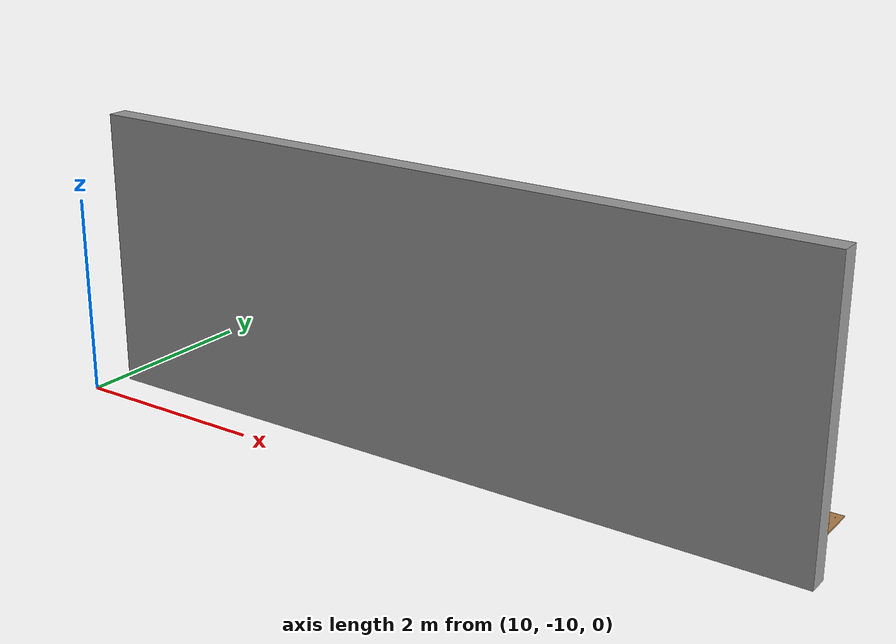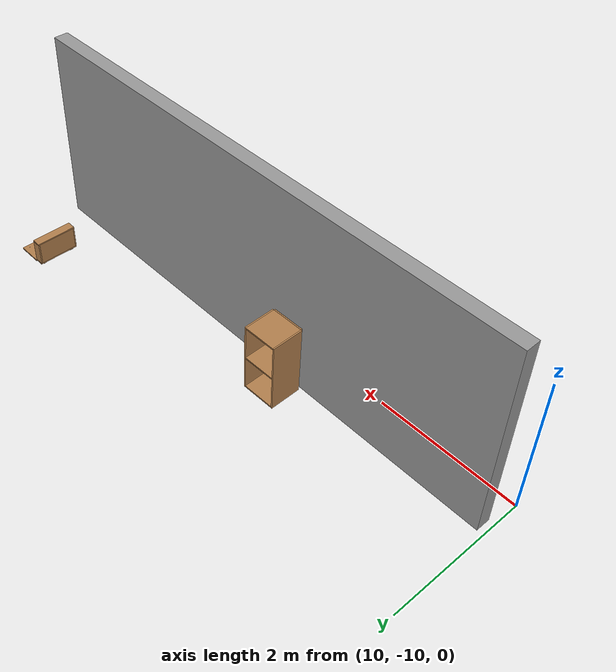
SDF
<sdf version="1.6">
 <world name="factory">
  <model name="grey_wall_clone_0">
   <static>1</static>
   <link name="link">
    <pose>0 0 1.4 0 -0 0</pose>
    <collision name="collision"><geometry><box><size>7.5 0.2 2.8</size></box></geometry></collision>
    <visual name="visual">
     <cast_shadows>0</cast_shadows>
     <geometry><box><size>7.5 0.2 2.8</size></box></geometry>
     <material>
      <script>
       <uri>model://grey_wall/materials/scripts</uri>
       <uri>model://grey_wall/materials/textures</uri>
       <name>vrc/grey_wall</name>
      </script>
     </material>
    </visual>
   </link>
   <pose>13.8347 -9.52636 0 0 -0 0</pose>
  </model>
  <model name="cabinet">
   <static>1</static>
   <link name="cabinet_bottom_plate">
    <inertial>
     <pose>0 0 -1 0 -0 0</pose>
     <inertia><ixx>2.05</ixx><ixy>0</ixy><ixz>0</ixz><iyy>2.05</iyy><iyz>0</iyz><izz>2.05</izz></inertia>
     <mass>25</mass>
    </inertial>
    <collision name="cabinet_bottom_plate_geom">
     <pose>0 0 0.01 0 -0 0</pose>
     <geometry><box><size>0.45 0.45 0.02</size></box></geometry>
    </collision>
    <visual name="cabinet_bottom_plate_geom_visual">
     <pose>0 0 0.01 0 -0 0</pose>
     <geometry><box><size>0.45 0.45 0.02</size></box></geometry>
     <material>
      <script><uri>file://media/materials/scripts/gazebo.material</uri><name>Gazebo/Wood</name></script>
     </material>
    </visual>
    <collision name="cabinet_bottom_plate_geom_cabinet_back_plate">
     <pose>0.235 0 0.51 0 -0 0</pose>
     <geometry><box><size>0.02 0.45 1.02</size></box></geometry>
    </collision>
    <visual name="cabinet_bottom_plate_geom_cabinet_back_plate_visual">
     <pose>0.235 0 0.51 0 -0 0</pose>
     <geometry><box><size>0.02 0.45 1.02</size></box></geometry>
     <material>
      <script><uri>file://media/materials/scripts/gazebo.material</uri><name>Gazebo/Wood</name></script>
     </material>
    </visual>
    <collision name="cabinet_bottom_plate_geom_cabinet_left_plate">
     <pose>0 0.235 0.51 0 -0 0</pose>
     <geometry><box><size>0.45 0.02 1.02</size></box></geometry>
    </collision>
    <visual name="cabinet_bottom_plate_geom_cabinet_left_plate_visual">
     <pose>0 0.235 0.51 0 -0 0</pose>
     <geometry><box><size>0.45 0.02 1.02</size></box></geometry>
     <material>
      <script><uri>file://media/materials/scripts/gazebo.material</uri><name>Gazebo/Wood</name></script>
     </material>
    </visual>
    <collision name="cabinet_bottom_plate_geom_cabinet_middle_plate">
     <pose>0 0 0.51 0 -0 0</pose>
     <geometry><box><size>0.45 0.45 0.02</size></box></geometry>
    </collision>
    <visual name="cabinet_bottom_plate_geom_cabinet_middle_plate_visual">
     <pose>0 0 0.51 0 -0 0</pose>
     <geometry><box><size>0.45 0.45 0.02</size></box></geometry>
     <material>
      <script><uri>file://media/materials/scripts/gazebo.material</uri><name>Gazebo/Wood</name></script>
     </material>
    </visual>
    <collision name="cabinet_bottom_plate_geom_cabinet_right_plate">
     <pose>0 -0.235 0.51 0 -0 0</pose>
     <geometry><box><size>0.45 0.02 1.02</size></box></geometry>
    </collision>
    <visual name="cabinet_bottom_plate_geom_cabinet_right_plate_visual">
     <pose>0 -0.235 0.51 0 -0 0</pose>
     <geometry><box><size>0.45 0.02 1.02</size></box></geometry>
     <material>
      <script><uri>file://media/materials/scripts/gazebo.material</uri><name>Gazebo/Wood</name></script>
     </material>
    </visual>
    <collision name="cabinet_bottom_plate_geom_cabinet_top_plate">
     <pose>0 0 1.01 0 -0 0</pose>
     <geometry><box><size>0.45 0.45 0.02</size></box></geometry>
    </collision>
    <visual name="cabinet_bottom_plate_geom_cabinet_top_plate_visual">
     <pose>0 0 1.01 0 -0 0</pose>
     <geometry><box><size>0.45 0.45 0.02</size></box></geometry>
     <material>
      <script><uri>file://media/materials/scripts/gazebo.material</uri><name>Gazebo/Wood</name></script>
     </material>
    </visual>
   </link>
   <pose>13.0394 -9.13497 0.037072 0 0 -1.55676</pose>
  </model>
  <model name="wooden_case">
   <link name="base">
    <pose>0 0 0.024 0 -0 0</pose>
    <inertial>
     <pose>-0.022184 0 0.171592 0 -0 0</pose>
     <mass>3.96264</mass>
     <inertia>
      <ixx>0.213536</ixx>
      <ixy>0</ixy>
      <ixz>0.000779377</ixz>
      <iyy>0.0708943</iyy>
      <iyz>0</iyz>
      <izz>0.154604</izz>
     </inertia>
    </inertial>
    <collision name="collision_back">
     <pose>-0.053975 0 0.1778 0 -0 0</pose>
     <geometry><box><size>0.01905 0.5461 0.3175</size></box></geometry>
     <surface>
      <contact>
       <poissons_ratio>0.347</poissons_ratio>
       <elastic_modulus>8.8e+09</elastic_modulus>
       <ode><kp>100000</kp><kd>100</kd><max_vel>100</max_vel><min_depth>0.001</min_depth></ode>
      </contact>
      <friction>
       <torsional>
        <coefficient>1</coefficient>
        <use_patch_radius>0</use_patch_radius>
        <surface_radius>0.01</surface_radius>
       </torsional>
      </friction>
     </surface>
    </collision>
    <visual name="visual_back">
     <pose>-0.053975 0 0.1778 0 -0 0</pose>
     <geometry><box><size>0.01905 0.5461 0.3175</size></box></geometry>
     <material>
      <script><uri>file://media/materials/scripts/gazebo.material</uri><name>Gazebo/Wood</name></script>
     </material>
    </visual>
    <collision name="collision_bottom">
     <pose>0 0 0.009525 0 -0 0</pose>
     <geometry><box><size>0.127 0.5842 0.01905</size></box></geometry>
     <surface>
      <contact>
       <poissons_ratio>0.347</poissons_ratio>
       <elastic_modulus>8.8e+09</elastic_modulus>
       <ode><kp>100000</kp><kd>100</kd><max_vel>100</max_vel><min_depth>0.001</min_depth></ode>
      </contact>
      <friction>
       <torsional>
        <coefficient>1</coefficient>
        <use_patch_radius>0</use_patch_radius>
        <surface_radius>0.01</surface_radius>
       </torsional>
      </friction>
     </surface>
    </collision>
    <visual name="visual_bottom">
     <pose>0 0 0.009525 0 -0 0</pose>
     <geometry><box><size>0.127 0.5842 0.01905</size></box></geometry>
     <material>
      <script><uri>file://media/materials/scripts/gazebo.material</uri><name>Gazebo/Wood</name></script>
     </material>
    </visual>
    <collision name="collision_top">
     <pose>0 0 0.346075 0 -0 0</pose>
     <geometry><box><size>0.127 0.5842 0.01905</size></box></geometry>
     <surface>
      <contact>
       <poissons_ratio>0.347</poissons_ratio>
       <elastic_modulus>8.8e+09</elastic_modulus>
       <ode><kp>100000</kp><kd>100</kd><max_vel>100</max_vel><min_depth>0.001</min_depth></ode>
      </contact>
      <friction>
       <torsional>
        <coefficient>1</coefficient>
        <use_patch_radius>0</use_patch_radius>
        <surface_radius>0.01</surface_radius>
       </torsional>
      </friction>
     </surface>
    </collision>
    <visual name="visual_top">
     <pose>0 0 0.346075 0 -0 0</pose>
     <geometry><box><size>0.127 0.5842 0.01905</size></box></geometry>
     <material>
      <script><uri>file://media/materials/scripts/gazebo.material</uri><name>Gazebo/Wood</name></script>
     </material>
    </visual>
    <collision name="collision_left">
     <pose>0 -0.282575 0.1778 0 -0 0</pose>
     <geometry><box><size>0.127 0.01905 0.3175</size></box></geometry>
     <surface>
      <contact>
       <poissons_ratio>0.347</poissons_ratio>
       <elastic_modulus>8.8e+09</elastic_modulus>
       <ode><kp>100000</kp><kd>100</kd><max_vel>100</max_vel><min_depth>0.001</min_depth></ode>
      </contact>
      <friction>
       <torsional>
        <coefficient>1</coefficient>
        <use_patch_radius>0</use_patch_radius>
        <surface_radius>0.01</surface_radius>
       </torsional>
      </friction>
     </surface>
    </collision>
    <visual name="visual_left">
     <pose>0 -0.282575 0.1778 0 -0 0</pose>
     <geometry><box><size>0.127 0.01905 0.3175</size></box></geometry>
     <material>
      <script><uri>file://media/materials/scripts/gazebo.material</uri><name>Gazebo/Wood</name></script>
     </material>
    </visual>
    <collision name="collision_right">
     <pose>0 0.282575 0.1778 0 -0 0</pose>
     <geometry><box><size>0.127 0.01905 0.3175</size></box></geometry>
     <surface>
      <contact>
       <poissons_ratio>0.347</poissons_ratio>
       <elastic_modulus>8.8e+09</elastic_modulus>
       <ode><kp>100000</kp><kd>100</kd><max_vel>100</max_vel><min_depth>0.001</min_depth></ode>
      </contact>
      <friction>
       <torsional>
        <coefficient>1</coefficient>
        <use_patch_radius>0</use_patch_radius>
        <surface_radius>0.01</surface_radius>
       </torsional>
      </friction>
     </surface>
    </collision>
    <visual name="visual_right">
     <pose>0 0.282575 0.1778 0 -0 0</pose>
     <geometry><box><size>0.127 0.01905 0.3175</size></box></geometry>
     <material>
      <script><uri>file://media/materials/scripts/gazebo.material</uri><name>Gazebo/Wood</name></script>
     </material>
    </visual>
    <collision name="collision_block_left">
     <pose>0.0095 -0.2151 -0.012 0 -0 0</pose>
     <geometry><box><size>0.108 0.05 0.024</size></box></geometry>
     <surface>
      <contact>
       <poissons_ratio>0.347</poissons_ratio>
       <elastic_modulus>8.8e+09</elastic_modulus>
       <ode><kp>100000</kp><kd>100</kd><max_vel>100</max_vel><min_depth>0.001</min_depth></ode>
      </contact>
      <friction>
       <torsional>
        <coefficient>1</coefficient>
        <use_patch_radius>0</use_patch_radius>
        <surface_radius>0.01</surface_radius>
       </torsional>
      </friction>
     </surface>
    </collision>
    <visual name="visual_block_left">
     <pose>0.0095 -0.2151 -0.012 0 -0 0</pose>
     <geometry><box><size>0.108 0.05 0.024</size></box></geometry>
     <material>
      <script><uri>file://media/materials/scripts/gazebo.material</uri><name>Gazebo/Wood</name></script>
     </material>
    </visual>
    <collision name="collision_block_right">
     <pose>0.0095 0.2151 -0.012 0 -0 0</pose>
     <geometry><box><size>0.108 0.05 0.024</size></box></geometry>
     <surface>
      <contact>
       <poissons_ratio>0.347</poissons_ratio>
       <elastic_modulus>8.8e+09</elastic_modulus>
       <ode><kp>100000</kp><kd>100</kd><max_vel>100</max_vel><min_depth>0.001</min_depth></ode>
      </contact>
      <friction>
       <torsional>
        <coefficient>1</coefficient>
        <use_patch_radius>0</use_patch_radius>
        <surface_radius>0.01</surface_radius>
       </torsional>
      </friction>
     </surface>
    </collision>
    <visual name="visual_block_right">
     <pose>0.0095 0.2151 -0.012 0 -0 0</pose>
     <geometry><box><size>0.108 0.05 0.024</size></box></geometry>
     <material>
      <script><uri>file://media/materials/scripts/gazebo.material</uri><name>Gazebo/Wood</name></script>
     </material>
    </visual>
   </link>
   <link name="lid">
    <pose>0.243775 0 0.009525 0 -0 0</pose>
    <inertial>
     <mass>1.97874</mass>
     <inertia>
      <ixx>0.0563367</ixx>
      <ixy>0</ixy>
      <ixz>0</ixz>
      <iyy>0.020911</iyy>
      <iyz>0</iyz>
      <izz>0.0771281</izz>
     </inertia>
    </inertial>
    <collision name="collision">
     <geometry><box><size>0.3556 0.5842 0.01905</size></box></geometry>
     <surface>
      <contact>
       <poissons_ratio>0.347</poissons_ratio>
       <elastic_modulus>8.8e+09</elastic_modulus>
       <ode><kp>100000</kp><kd>100</kd><max_vel>100</max_vel><min_depth>0.001</min_depth></ode>
      </contact>
      <friction>
       <torsional>
        <coefficient>1</coefficient>
        <use_patch_radius>0</use_patch_radius>
        <surface_radius>0.01</surface_radius>
       </torsional>
      </friction>
     </surface>
    </collision>
    <visual name="visual">
     <geometry><box><size>0.3556 0.5842 0.01905</size></box></geometry>
     <material>
      <script><uri>file://media/materials/scripts/gazebo.material</uri><name>Gazebo/Wood</name></script>
     </material>
    </visual>
    <visual name="tee_nut_1">
     <pose>0.122 -0.216 0 0 -0 0</pose>
     <geometry><cylinder><radius>0.00635</radius><length>0.0192405</length></cylinder></geometry>
     <material>
      <script><uri>file://media/materials/scripts/gazebo.material</uri><name>Gazebo/Grey</name></script>
     </material>
    </visual>
    <visual name="tee_nut_2">
     <pose>0.122 -0.088 0 0 -0 0</pose>
     <geometry><cylinder><radius>0.00635</radius><length>0.0192405</length></cylinder></geometry>
     <material>
      <script><uri>file://media/materials/scripts/gazebo.material</uri><name>Gazebo/Grey</name></script>
     </material>
    </visual>
    <visual name="tee_nut_3">
     <pose>0.122 0.088 0 0 -0 0</pose>
     <geometry><cylinder><radius>0.00635</radius><length>0.0192405</length></cylinder></geometry>
     <material>
      <script><uri>file://media/materials/scripts/gazebo.material</uri><name>Gazebo/Grey</name></script>
     </material>
    </visual>
    <visual name="tee_nut_4">
     <pose>0.122 0.216 0 0 -0 0</pose>
     <geometry><cylinder><radius>0.00635</radius><length>0.0192405</length></cylinder></geometry>
     <material>
      <script><uri>file://media/materials/scripts/gazebo.material</uri><name>Gazebo/Grey</name></script>
     </material>
    </visual>
   </link>
   <joint name="lid_hinge" type="revolute">
    <pose>-0.1778 0 0.01905 0 -0 0</pose>
    <parent>base</parent>
    <child>lid</child>
    <axis>
     <xyz>0 1 0</xyz>
     <limit><upper>0.523599</upper><lower>-1.5708</lower></limit>
     <use_parent_model_frame>0</use_parent_model_frame>
     <dynamics><spring_reference>0</spring_reference><spring_stiffness>0</spring_stiffness></dynamics>
    </axis>
   </joint>
   <pose>16.9031 -8.59915 -0.001057 0 -0.000431 0</pose>
  </model>
 </world>
</sdf>
